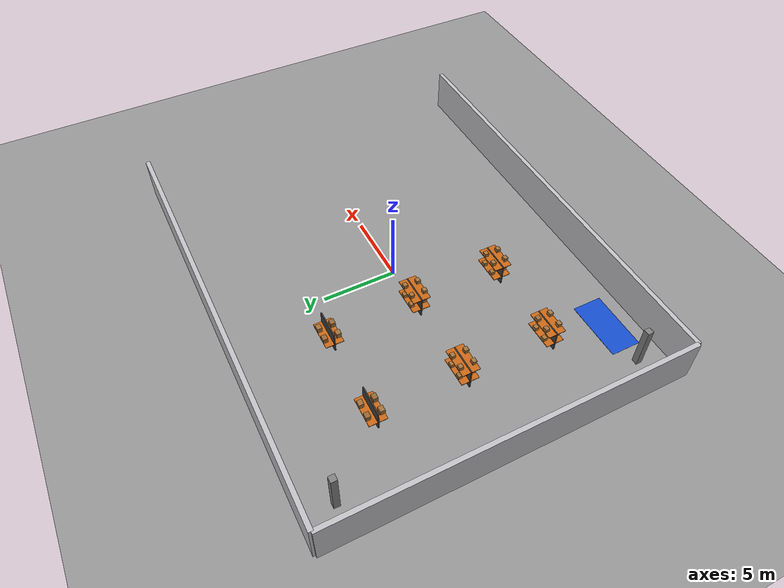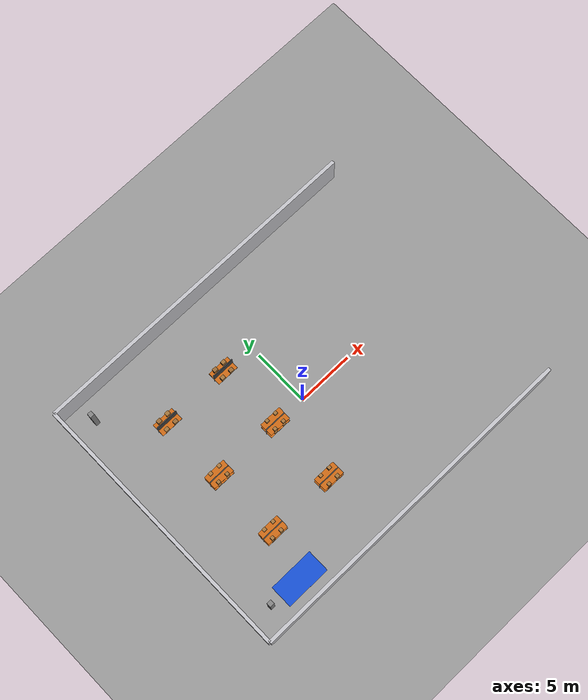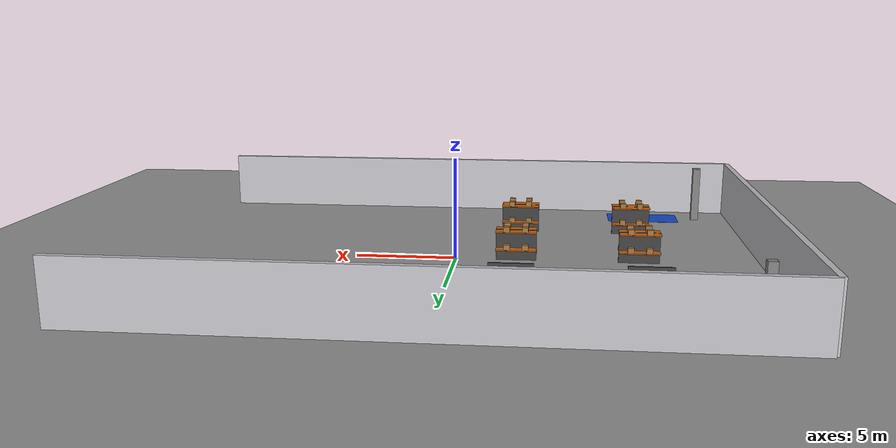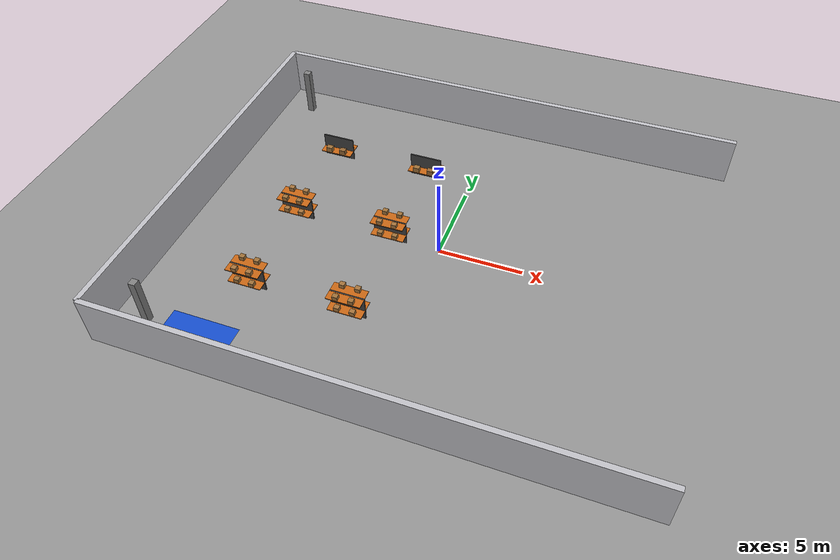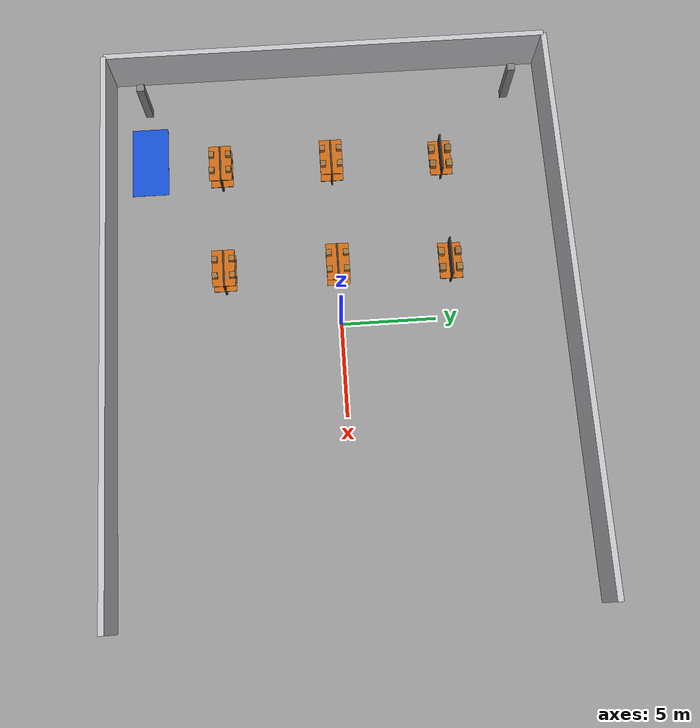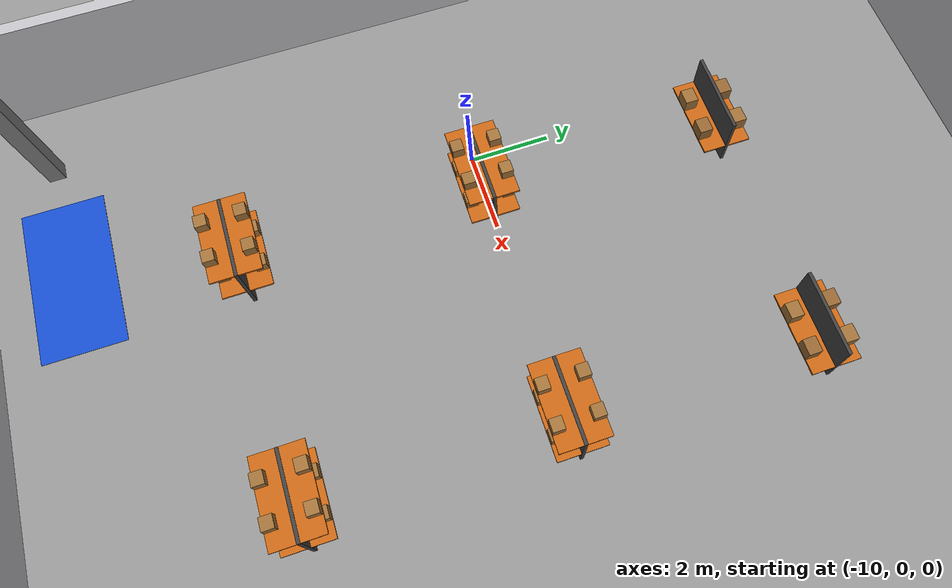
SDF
<sdf version="1.7">
 <world name="multi_robot_warehouse">
  <model name="ground_plane">
   <static>true</static>
   <link name="link">
    <collision name="collision">
     <geometry><plane><normal>0 0 1</normal><size>80 80</size></plane></geometry>
     <surface><friction><ode><mu>0.9</mu><mu2>0.9</mu2></ode></friction></surface>
    </collision>
    <visual name="visual">
     <geometry><plane><normal>0 0 1</normal><size>80 80</size></plane></geometry>
     <material>
      <ambient>0.50 0.50 0.50 1</ambient>
      <diffuse>0.58 0.58 0.58 1</diffuse>
      <specular>0.08 0.08 0.08 1</specular>
     </material>
    </visual>
   </link>
  </model>
  <model name="north_wall">
   <static>true</static>
   <pose>0 12 1.5 0 0 0</pose>
   <link name="link">
    <collision name="collision"><geometry><box><size>30 0.3 3</size></box></geometry></collision>
    <visual name="visual">
     <geometry><box><size>30 0.3 3</size></box></geometry>
     <material>
      <ambient>0.70 0.70 0.72 1</ambient>
      <diffuse>0.75 0.75 0.77 1</diffuse>
      <specular>0.15 0.15 0.15 1</specular>
     </material>
    </visual>
   </link>
  </model>
  <model name="south_wall">
   <static>true</static>
   <pose>0 -12 1.5 0 0 0</pose>
   <link name="link">
    <collision name="collision"><geometry><box><size>30 0.3 3</size></box></geometry></collision>
    <visual name="visual">
     <geometry><box><size>30 0.3 3</size></box></geometry>
     <material>
      <ambient>0.70 0.70 0.72 1</ambient>
      <diffuse>0.75 0.75 0.77 1</diffuse>
      <specular>0.15 0.15 0.15 1</specular>
     </material>
    </visual>
   </link>
  </model>
  <model name="west_wall">
   <static>true</static>
   <pose>-15 0 1.5 0 0 0</pose>
   <link name="link">
    <collision name="collision"><geometry><box><size>0.3 24 3</size></box></geometry></collision>
    <visual name="visual">
     <geometry><box><size>0.3 24 3</size></box></geometry>
     <material>
      <ambient>0.70 0.70 0.72 1</ambient>
      <diffuse>0.75 0.75 0.77 1</diffuse>
      <specular>0.15 0.15 0.15 1</specular>
     </material>
    </visual>
   </link>
  </model>
  <model name="pillar_nw">
   <static>true</static>
   <pose>-13 10 1.5 0 0 0</pose>
   <link name="link">
    <collision name="collision"><geometry><box><size>0.4 0.4 3.0</size></box></geometry></collision>
    <visual name="visual">
     <geometry><box><size>0.4 0.4 3.0</size></box></geometry>
     <material>
      <ambient>0.45 0.45 0.45 1</ambient>
      <diffuse>0.50 0.50 0.50 1</diffuse>
      <specular>0.20 0.20 0.20 1</specular>
     </material>
    </visual>
   </link>
  </model>
  <model name="pillar_sw">
   <static>true</static>
   <pose>-13 -10 1.5 0 0 0</pose>
   <link name="link">
    <collision name="collision"><geometry><box><size>0.4 0.4 3.0</size></box></geometry></collision>
    <visual name="visual">
     <geometry><box><size>0.4 0.4 3.0</size></box></geometry>
     <material>
      <ambient>0.45 0.45 0.45 1</ambient>
      <diffuse>0.50 0.50 0.50 1</diffuse>
      <specular>0.20 0.20 0.20 1</specular>
     </material>
    </visual>
   </link>
  </model>
  <model name="shelf_1_1_frame">
   <static>true</static>
   <pose>-9 6 0.75 0 0 0</pose>
   <link name="link">
    <collision name="collision"><geometry><box><size>2.0 0.08 1.5</size></box></geometry></collision>
    <visual name="visual">
     <geometry><box><size>2.0 0.08 1.5</size></box></geometry>
     <material>
      <ambient>0.20 0.20 0.20 1</ambient>
      <diffuse>0.25 0.25 0.25 1</diffuse>
      <specular>0.30 0.30 0.30 1</specular>
     </material>
    </visual>
   </link>
  </model>
  <model name="shelf_1_1_board_low">
   <static>true</static>
   <pose>-9 6 0.6 0 0 0</pose>
   <link name="link">
    <visual name="visual">
     <geometry><box><size>2.0 1.2 0.05</size></box></geometry>
     <material>
      <ambient>0.72 0.35 0.05 1</ambient>
      <diffuse>0.78 0.40 0.08 1</diffuse>
      <specular>0.20 0.12 0.04 1</specular>
     </material>
    </visual>
    <collision name="collision"><geometry><box><size>2.0 1.2 0.05</size></box></geometry></collision>
   </link>
  </model>
  <model name="shelf_1_2_frame">
   <static>true</static>
   <pose>-3 6 0.75 0 0 0</pose>
   <link name="link">
    <collision name="collision"><geometry><box><size>2.0 0.08 1.5</size></box></geometry></collision>
    <visual name="visual">
     <geometry><box><size>2.0 0.08 1.5</size></box></geometry>
     <material>
      <ambient>0.20 0.20 0.20 1</ambient>
      <diffuse>0.25 0.25 0.25 1</diffuse>
      <specular>0.30 0.30 0.30 1</specular>
     </material>
    </visual>
   </link>
  </model>
  <model name="shelf_1_2_board_low">
   <static>true</static>
   <pose>-3 6 0.6 0 0 0</pose>
   <link name="link">
    <visual name="visual">
     <geometry><box><size>2.0 1.2 0.05</size></box></geometry>
     <material>
      <ambient>0.72 0.35 0.05 1</ambient>
      <diffuse>0.78 0.40 0.08 1</diffuse>
      <specular>0.20 0.12 0.04 1</specular>
     </material>
    </visual>
    <collision name="collision"><geometry><box><size>2.0 1.2 0.05</size></box></geometry></collision>
   </link>
  </model>
  <model name="bigbox_1_1_ll">
   <static>true</static>
   <pose>-9.45 5.55 0.795 0 0 0</pose>
   <link name="bigbox_1_1_ll">
    <visual name="visual">
     <geometry><box><size>0.38 0.32 0.34</size></box></geometry>
     <material>
      <ambient>0.55 0.38 0.18 1</ambient>
      <diffuse>0.62 0.44 0.22 1</diffuse>
      <specular>0.05 0.04 0.02 1</specular>
     </material>
    </visual>
    <collision name="collision"><geometry><box><size>0.38 0.32 0.34</size></box></geometry></collision>
   </link>
  </model>
  <model name="bigbox_1_1_lr">
   <static>true</static>
   <pose>-9.45 6.45 0.795 0 0 0</pose>
   <link name="bigbox_1_1_lr">
    <visual name="visual">
     <geometry><box><size>0.38 0.32 0.34</size></box></geometry>
     <material>
      <ambient>0.5 0.35 0.15 1</ambient>
      <diffuse>0.58 0.4 0.2 1</diffuse>
      <specular>0.05 0.04 0.02 1</specular>
     </material>
    </visual>
    <collision name="collision"><geometry><box><size>0.38 0.32 0.34</size></box></geometry></collision>
   </link>
  </model>
  <model name="bigbox_1_1_rl">
   <static>true</static>
   <pose>-8.55 5.55 0.795 0 0 0</pose>
   <link name="bigbox_1_1_rl">
    <visual name="visual">
     <geometry><box><size>0.38 0.32 0.34</size></box></geometry>
     <material>
      <ambient>0.5 0.35 0.15 1</ambient>
      <diffuse>0.58 0.4 0.2 1</diffuse>
      <specular>0.05 0.04 0.02 1</specular>
     </material>
    </visual>
    <collision name="collision"><geometry><box><size>0.38 0.32 0.34</size></box></geometry></collision>
   </link>
  </model>
  <model name="bigbox_1_1_rr">
   <static>true</static>
   <pose>-8.55 6.45 0.795 0 0 0</pose>
   <link name="bigbox_1_1_rr">
    <visual name="visual">
     <geometry><box><size>0.38 0.32 0.34</size></box></geometry>
     <material>
      <ambient>0.55 0.38 0.18 1</ambient>
      <diffuse>0.62 0.44 0.22 1</diffuse>
      <specular>0.05 0.04 0.02 1</specular>
     </material>
    </visual>
    <collision name="collision"><geometry><box><size>0.38 0.32 0.34</size></box></geometry></collision>
   </link>
  </model>
  <model name="bigbox_1_2_ll">
   <static>true</static>
   <pose>-3.45 5.55 0.795 0 0 0</pose>
   <link name="bigbox_1_2_ll">
    <visual name="visual">
     <geometry><box><size>0.38 0.32 0.34</size></box></geometry>
     <material>
      <ambient>0.55 0.38 0.18 1</ambient>
      <diffuse>0.62 0.44 0.22 1</diffuse>
      <specular>0.05 0.04 0.02 1</specular>
     </material>
    </visual>
    <collision name="collision"><geometry><box><size>0.38 0.32 0.34</size></box></geometry></collision>
   </link>
  </model>
  <model name="bigbox_1_2_lr">
   <static>true</static>
   <pose>-3.45 6.45 0.795 0 0 0</pose>
   <link name="bigbox_1_2_lr">
    <visual name="visual">
     <geometry><box><size>0.38 0.32 0.34</size></box></geometry>
     <material>
      <ambient>0.5 0.35 0.15 1</ambient>
      <diffuse>0.58 0.4 0.2 1</diffuse>
      <specular>0.05 0.04 0.02 1</specular>
     </material>
    </visual>
    <collision name="collision"><geometry><box><size>0.38 0.32 0.34</size></box></geometry></collision>
   </link>
  </model>
  <model name="bigbox_1_2_rl">
   <static>true</static>
   <pose>-2.55 5.55 0.795 0 0 0</pose>
   <link name="bigbox_1_2_rl">
    <visual name="visual">
     <geometry><box><size>0.38 0.32 0.34</size></box></geometry>
     <material>
      <ambient>0.5 0.35 0.15 1</ambient>
      <diffuse>0.58 0.4 0.2 1</diffuse>
      <specular>0.05 0.04 0.02 1</specular>
     </material>
    </visual>
    <collision name="collision"><geometry><box><size>0.38 0.32 0.34</size></box></geometry></collision>
   </link>
  </model>
  <model name="bigbox_1_2_rr">
   <static>true</static>
   <pose>-2.55 6.45 0.795 0 0 0</pose>
   <link name="bigbox_1_2_rr">
    <visual name="visual">
     <geometry><box><size>0.38 0.32 0.34</size></box></geometry>
     <material>
      <ambient>0.55 0.38 0.18 1</ambient>
      <diffuse>0.62 0.44 0.22 1</diffuse>
      <specular>0.05 0.04 0.02 1</specular>
     </material>
    </visual>
    <collision name="collision"><geometry><box><size>0.38 0.32 0.34</size></box></geometry></collision>
   </link>
  </model>
  <model name="shelf_2_1_frame">
   <static>true</static>
   <pose>-9 0 0.765 0 0 0</pose>
   <link name="link">
    <collision name="collision"><geometry><box><size>2.0 0.08 1.53</size></box></geometry></collision>
    <visual name="visual">
     <geometry><box><size>2.0 0.08 1.53</size></box></geometry>
     <material>
      <ambient>0.20 0.20 0.20 1</ambient>
      <diffuse>0.25 0.25 0.25 1</diffuse>
      <specular>0.30 0.30 0.30 1</specular>
     </material>
    </visual>
   </link>
  </model>
  <model name="shelf_2_1_board_low">
   <static>true</static>
   <pose>-9 0 0.6 0 0 0</pose>
   <link name="link">
    <visual name="visual">
     <geometry><box><size>2.0 1.2 0.05</size></box></geometry>
     <material>
      <ambient>0.72 0.35 0.05 1</ambient>
      <diffuse>0.78 0.40 0.08 1</diffuse>
      <specular>0.20 0.12 0.04 1</specular>
     </material>
    </visual>
    <collision name="collision"><geometry><box><size>2.0 1.2 0.05</size></box></geometry></collision>
   </link>
  </model>
  <model name="box_2_1_low_la">
   <static>true</static>
   <pose>-9.45 -0.45 0.755 0 0 0.0</pose>
   <link name="box_2_1_low_la">
    <visual name="visual">
     <geometry><box><size>0.3 0.28 0.26</size></box></geometry>
     <material>
      <ambient>0.58 0.4 0.19 1</ambient>
      <diffuse>0.64 0.45 0.23 1</diffuse>
      <specular>0.05 0.04 0.02 1</specular>
     </material>
    </visual>
    <collision name="collision"><geometry><box><size>0.3 0.28 0.26</size></box></geometry></collision>
   </link>
  </model>
  <model name="box_2_1_low_lb">
   <static>true</static>
   <pose>-9.45 0.45 0.755 0 0 0.0</pose>
   <link name="box_2_1_low_lb">
    <visual name="visual">
     <geometry><box><size>0.3 0.28 0.26</size></box></geometry>
     <material>
      <ambient>0.55 0.38 0.18 1</ambient>
      <diffuse>0.62 0.44 0.22 1</diffuse>
      <specular>0.05 0.04 0.02 1</specular>
     </material>
    </visual>
    <collision name="collision"><geometry><box><size>0.3 0.28 0.26</size></box></geometry></collision>
   </link>
  </model>
  <model name="box_2_1_low_ra">
   <static>true</static>
   <pose>-8.55 -0.45 0.755 0 0 0.0</pose>
   <link name="box_2_1_low_ra">
    <visual name="visual">
     <geometry><box><size>0.3 0.28 0.26</size></box></geometry>
     <material>
      <ambient>0.58 0.4 0.19 1</ambient>
      <diffuse>0.64 0.45 0.23 1</diffuse>
      <specular>0.05 0.04 0.02 1</specular>
     </material>
    </visual>
    <collision name="collision"><geometry><box><size>0.3 0.28 0.26</size></box></geometry></collision>
   </link>
  </model>
  <model name="box_2_1_low_rb">
   <static>true</static>
   <pose>-8.55 0.45 0.755 0 0 0.0</pose>
   <link name="box_2_1_low_rb">
    <visual name="visual">
     <geometry><box><size>0.3 0.28 0.26</size></box></geometry>
     <material>
      <ambient>0.55 0.38 0.18 1</ambient>
      <diffuse>0.62 0.44 0.22 1</diffuse>
      <specular>0.05 0.04 0.02 1</specular>
     </material>
    </visual>
    <collision name="collision"><geometry><box><size>0.3 0.28 0.26</size></box></geometry></collision>
   </link>
  </model>
  <model name="shelf_2_1_board_high">
   <static>true</static>
   <pose>-9 0 1.5 0 0 0</pose>
   <link name="link">
    <visual name="visual">
     <geometry><box><size>2.0 1.2 0.05</size></box></geometry>
     <material>
      <ambient>0.72 0.35 0.05 1</ambient>
      <diffuse>0.78 0.40 0.08 1</diffuse>
      <specular>0.20 0.12 0.04 1</specular>
     </material>
    </visual>
    <collision name="collision"><geometry><box><size>2.0 1.2 0.05</size></box></geometry></collision>
   </link>
  </model>
  <model name="box_2_1_high_la">
   <static>true</static>
   <pose>-9.45 -0.45 1.655 0 0 0.0</pose>
   <link name="box_2_1_high_la">
    <visual name="visual">
     <geometry><box><size>0.3 0.28 0.26</size></box></geometry>
     <material>
      <ambient>0.55 0.38 0.18 1</ambient>
      <diffuse>0.62 0.44 0.22 1</diffuse>
      <specular>0.05 0.04 0.02 1</specular>
     </material>
    </visual>
   </link>
  </model>
  <model name="box_2_1_high_lb">
   <static>true</static>
   <pose>-9.45 0.45 1.655 0 0 0.0</pose>
   <link name="box_2_1_high_lb">
    <visual name="visual">
     <geometry><box><size>0.3 0.28 0.26</size></box></geometry>
     <material>
      <ambient>0.58 0.4 0.19 1</ambient>
      <diffuse>0.64 0.45 0.23 1</diffuse>
      <specular>0.05 0.04 0.02 1</specular>
     </material>
    </visual>
   </link>
  </model>
  <model name="box_2_1_high_ra">
   <static>true</static>
   <pose>-8.55 -0.45 1.655 0 0 0.0</pose>
   <link name="box_2_1_high_ra">
    <visual name="visual">
     <geometry><box><size>0.3 0.28 0.26</size></box></geometry>
     <material>
      <ambient>0.55 0.38 0.18 1</ambient>
      <diffuse>0.62 0.44 0.22 1</diffuse>
      <specular>0.05 0.04 0.02 1</specular>
     </material>
    </visual>
   </link>
  </model>
  <model name="box_2_1_high_rb">
   <static>true</static>
   <pose>-8.55 0.45 1.655 0 0 0.0</pose>
   <link name="box_2_1_high_rb">
    <visual name="visual">
     <geometry><box><size>0.3 0.28 0.26</size></box></geometry>
     <material>
      <ambient>0.58 0.4 0.19 1</ambient>
      <diffuse>0.64 0.45 0.23 1</diffuse>
      <specular>0.05 0.04 0.02 1</specular>
     </material>
    </visual>
   </link>
  </model>
  <model name="shelf_2_2_frame">
   <static>true</static>
   <pose>-3 0 0.765 0 0 0</pose>
   <link name="link">
    <collision name="collision"><geometry><box><size>2.0 0.08 1.53</size></box></geometry></collision>
    <visual name="visual">
     <geometry><box><size>2.0 0.08 1.53</size></box></geometry>
     <material>
      <ambient>0.20 0.20 0.20 1</ambient>
      <diffuse>0.25 0.25 0.25 1</diffuse>
      <specular>0.30 0.30 0.30 1</specular>
     </material>
    </visual>
   </link>
  </model>
  <model name="shelf_2_2_board_low">
   <static>true</static>
   <pose>-3 0 0.6 0 0 0</pose>
   <link name="link">
    <visual name="visual">
     <geometry><box><size>2.0 1.2 0.05</size></box></geometry>
     <material>
      <ambient>0.72 0.35 0.05 1</ambient>
      <diffuse>0.78 0.40 0.08 1</diffuse>
      <specular>0.20 0.12 0.04 1</specular>
     </material>
    </visual>
    <collision name="collision"><geometry><box><size>2.0 1.2 0.05</size></box></geometry></collision>
   </link>
  </model>
  <model name="box_2_2_low_la">
   <static>true</static>
   <pose>-3.45 -0.45 0.755 0 0 0.0</pose>
   <link name="box_2_2_low_la">
    <visual name="visual">
     <geometry><box><size>0.3 0.28 0.26</size></box></geometry>
     <material>
      <ambient>0.55 0.38 0.18 1</ambient>
      <diffuse>0.62 0.44 0.22 1</diffuse>
      <specular>0.05 0.04 0.02 1</specular>
     </material>
    </visual>
    <collision name="collision"><geometry><box><size>0.3 0.28 0.26</size></box></geometry></collision>
   </link>
  </model>
  <model name="box_2_2_low_lb">
   <static>true</static>
   <pose>-3.45 0.45 0.755 0 0 0.0</pose>
   <link name="box_2_2_low_lb">
    <visual name="visual">
     <geometry><box><size>0.3 0.28 0.26</size></box></geometry>
     <material>
      <ambient>0.58 0.4 0.19 1</ambient>
      <diffuse>0.64 0.45 0.23 1</diffuse>
      <specular>0.05 0.04 0.02 1</specular>
     </material>
    </visual>
    <collision name="collision"><geometry><box><size>0.3 0.28 0.26</size></box></geometry></collision>
   </link>
  </model>
  <model name="box_2_2_low_ra">
   <static>true</static>
   <pose>-2.55 -0.45 0.755 0 0 0.0</pose>
   <link name="box_2_2_low_ra">
    <visual name="visual">
     <geometry><box><size>0.3 0.28 0.26</size></box></geometry>
     <material>
      <ambient>0.55 0.38 0.18 1</ambient>
      <diffuse>0.62 0.44 0.22 1</diffuse>
      <specular>0.05 0.04 0.02 1</specular>
     </material>
    </visual>
    <collision name="collision"><geometry><box><size>0.3 0.28 0.26</size></box></geometry></collision>
   </link>
  </model>
  <model name="box_2_2_low_rb">
   <static>true</static>
   <pose>-2.55 0.45 0.755 0 0 0.0</pose>
   <link name="box_2_2_low_rb">
    <visual name="visual">
     <geometry><box><size>0.3 0.28 0.26</size></box></geometry>
     <material>
      <ambient>0.58 0.4 0.19 1</ambient>
      <diffuse>0.64 0.45 0.23 1</diffuse>
      <specular>0.05 0.04 0.02 1</specular>
     </material>
    </visual>
    <collision name="collision"><geometry><box><size>0.3 0.28 0.26</size></box></geometry></collision>
   </link>
  </model>
  <model name="shelf_2_2_board_high">
   <static>true</static>
   <pose>-3 0 1.5 0 0 0</pose>
   <link name="link">
    <visual name="visual">
     <geometry><box><size>2.0 1.2 0.05</size></box></geometry>
     <material>
      <ambient>0.72 0.35 0.05 1</ambient>
      <diffuse>0.78 0.40 0.08 1</diffuse>
      <specular>0.20 0.12 0.04 1</specular>
     </material>
    </visual>
    <collision name="collision"><geometry><box><size>2.0 1.2 0.05</size></box></geometry></collision>
   </link>
  </model>
  <model name="box_2_2_high_la">
   <static>true</static>
   <pose>-3.45 -0.45 1.655 0 0 0.0</pose>
   <link name="box_2_2_high_la">
    <visual name="visual">
     <geometry><box><size>0.3 0.28 0.26</size></box></geometry>
     <material>
      <ambient>0.58 0.4 0.19 1</ambient>
      <diffuse>0.64 0.45 0.23 1</diffuse>
      <specular>0.05 0.04 0.02 1</specular>
     </material>
    </visual>
   </link>
  </model>
  <model name="box_2_2_high_lb">
   <static>true</static>
   <pose>-3.45 0.45 1.655 0 0 0.0</pose>
   <link name="box_2_2_high_lb">
    <visual name="visual">
     <geometry><box><size>0.3 0.28 0.26</size></box></geometry>
     <material>
      <ambient>0.55 0.38 0.18 1</ambient>
      <diffuse>0.62 0.44 0.22 1</diffuse>
      <specular>0.05 0.04 0.02 1</specular>
     </material>
    </visual>
   </link>
  </model>
  <model name="box_2_2_high_ra">
   <static>true</static>
   <pose>-2.55 -0.45 1.655 0 0 0.0</pose>
   <link name="box_2_2_high_ra">
    <visual name="visual">
     <geometry><box><size>0.3 0.28 0.26</size></box></geometry>
     <material>
      <ambient>0.58 0.4 0.19 1</ambient>
      <diffuse>0.64 0.45 0.23 1</diffuse>
      <specular>0.05 0.04 0.02 1</specular>
     </material>
    </visual>
   </link>
  </model>
  <model name="box_2_2_high_rb">
   <static>true</static>
   <pose>-2.55 0.45 1.655 0 0 0.0</pose>
   <link name="box_2_2_high_rb">
    <visual name="visual">
     <geometry><box><size>0.3 0.28 0.26</size></box></geometry>
     <material>
      <ambient>0.55 0.38 0.18 1</ambient>
      <diffuse>0.62 0.44 0.22 1</diffuse>
      <specular>0.05 0.04 0.02 1</specular>
     </material>
    </visual>
   </link>
  </model>
  <model name="shelf_3_1_frame">
   <static>true</static>
   <pose>-9 -6 0.765 0 0 0</pose>
   <link name="link">
    <collision name="collision"><geometry><box><size>2.0 0.08 1.53</size></box></geometry></collision>
    <visual name="visual">
     <geometry><box><size>2.0 0.08 1.53</size></box></geometry>
     <material>
      <ambient>0.20 0.20 0.20 1</ambient>
      <diffuse>0.25 0.25 0.25 1</diffuse>
      <specular>0.30 0.30 0.30 1</specular>
     </material>
    </visual>
   </link>
  </model>
  <model name="shelf_3_1_board_low">
   <static>true</static>
   <pose>-9 -6 0.6 0 0 0</pose>
   <link name="link">
    <visual name="visual">
     <geometry><box><size>2.0 1.2 0.05</size></box></geometry>
     <material>
      <ambient>0.72 0.35 0.05 1</ambient>
      <diffuse>0.78 0.40 0.08 1</diffuse>
      <specular>0.20 0.12 0.04 1</specular>
     </material>
    </visual>
    <collision name="collision"><geometry><box><size>2.0 1.2 0.05</size></box></geometry></collision>
   </link>
  </model>
  <model name="box_3_1_low_la">
   <static>true</static>
   <pose>-9.45 -6.45 0.755 0 0 0.0</pose>
   <link name="box_3_1_low_la">
    <visual name="visual">
     <geometry><box><size>0.3 0.28 0.26</size></box></geometry>
     <material>
      <ambient>0.55 0.38 0.18 1</ambient>
      <diffuse>0.62 0.44 0.22 1</diffuse>
      <specular>0.05 0.04 0.02 1</specular>
     </material>
    </visual>
    <collision name="collision"><geometry><box><size>0.3 0.28 0.26</size></box></geometry></collision>
   </link>
  </model>
  <model name="box_3_1_low_lb">
   <static>true</static>
   <pose>-9.45 -5.55 0.755 0 0 0.0</pose>
   <link name="box_3_1_low_lb">
    <visual name="visual">
     <geometry><box><size>0.3 0.28 0.26</size></box></geometry>
     <material>
      <ambient>0.58 0.4 0.19 1</ambient>
      <diffuse>0.64 0.45 0.23 1</diffuse>
      <specular>0.05 0.04 0.02 1</specular>
     </material>
    </visual>
    <collision name="collision"><geometry><box><size>0.3 0.28 0.26</size></box></geometry></collision>
   </link>
  </model>
  <model name="box_3_1_low_ra">
   <static>true</static>
   <pose>-8.55 -6.45 0.755 0 0 0.0</pose>
   <link name="box_3_1_low_ra">
    <visual name="visual">
     <geometry><box><size>0.3 0.28 0.26</size></box></geometry>
     <material>
      <ambient>0.55 0.38 0.18 1</ambient>
      <diffuse>0.62 0.44 0.22 1</diffuse>
      <specular>0.05 0.04 0.02 1</specular>
     </material>
    </visual>
    <collision name="collision"><geometry><box><size>0.3 0.28 0.26</size></box></geometry></collision>
   </link>
  </model>
  <model name="box_3_1_low_rb">
   <static>true</static>
   <pose>-8.55 -5.55 0.755 0 0 0.0</pose>
   <link name="box_3_1_low_rb">
    <visual name="visual">
     <geometry><box><size>0.3 0.28 0.26</size></box></geometry>
     <material>
      <ambient>0.58 0.4 0.19 1</ambient>
      <diffuse>0.64 0.45 0.23 1</diffuse>
      <specular>0.05 0.04 0.02 1</specular>
     </material>
    </visual>
    <collision name="collision"><geometry><box><size>0.3 0.28 0.26</size></box></geometry></collision>
   </link>
  </model>
  <model name="shelf_3_1_board_high">
   <static>true</static>
   <pose>-9 -6 1.5 0 0 0</pose>
   <link name="link">
    <visual name="visual">
     <geometry><box><size>2.0 1.2 0.05</size></box></geometry>
     <material>
      <ambient>0.72 0.35 0.05 1</ambient>
      <diffuse>0.78 0.40 0.08 1</diffuse>
      <specular>0.20 0.12 0.04 1</specular>
     </material>
    </visual>
    <collision name="collision"><geometry><box><size>2.0 1.2 0.05</size></box></geometry></collision>
   </link>
  </model>
  <model name="box_3_1_high_la">
   <static>true</static>
   <pose>-9.45 -6.45 1.655 0 0 0.0</pose>
   <link name="box_3_1_high_la">
    <visual name="visual">
     <geometry><box><size>0.3 0.28 0.26</size></box></geometry>
     <material>
      <ambient>0.58 0.4 0.19 1</ambient>
      <diffuse>0.64 0.45 0.23 1</diffuse>
      <specular>0.05 0.04 0.02 1</specular>
     </material>
    </visual>
   </link>
  </model>
  <model name="box_3_1_high_lb">
   <static>true</static>
   <pose>-9.45 -5.55 1.655 0 0 0.0</pose>
   <link name="box_3_1_high_lb">
    <visual name="visual">
     <geometry><box><size>0.3 0.28 0.26</size></box></geometry>
     <material>
      <ambient>0.55 0.38 0.18 1</ambient>
      <diffuse>0.62 0.44 0.22 1</diffuse>
      <specular>0.05 0.04 0.02 1</specular>
     </material>
    </visual>
   </link>
  </model>
  <model name="box_3_1_high_ra">
   <static>true</static>
   <pose>-8.55 -6.45 1.655 0 0 0.0</pose>
   <link name="box_3_1_high_ra">
    <visual name="visual">
     <geometry><box><size>0.3 0.28 0.26</size></box></geometry>
     <material>
      <ambient>0.58 0.4 0.19 1</ambient>
      <diffuse>0.64 0.45 0.23 1</diffuse>
      <specular>0.05 0.04 0.02 1</specular>
     </material>
    </visual>
   </link>
  </model>
  <model name="box_3_1_high_rb">
   <static>true</static>
   <pose>-8.55 -5.55 1.655 0 0 0.0</pose>
   <link name="box_3_1_high_rb">
    <visual name="visual">
     <geometry><box><size>0.3 0.28 0.26</size></box></geometry>
     <material>
      <ambient>0.55 0.38 0.18 1</ambient>
      <diffuse>0.62 0.44 0.22 1</diffuse>
      <specular>0.05 0.04 0.02 1</specular>
     </material>
    </visual>
   </link>
  </model>
  <model name="shelf_3_2_frame">
   <static>true</static>
   <pose>-3 -6 0.765 0 0 0</pose>
   <link name="link">
    <collision name="collision"><geometry><box><size>2.0 0.08 1.53</size></box></geometry></collision>
    <visual name="visual">
     <geometry><box><size>2.0 0.08 1.53</size></box></geometry>
     <material>
      <ambient>0.20 0.20 0.20 1</ambient>
      <diffuse>0.25 0.25 0.25 1</diffuse>
      <specular>0.30 0.30 0.30 1</specular>
     </material>
    </visual>
   </link>
  </model>
  <model name="shelf_3_2_board_low">
   <static>true</static>
   <pose>-3 -6 0.6 0 0 0</pose>
   <link name="link">
    <visual name="visual">
     <geometry><box><size>2.0 1.2 0.05</size></box></geometry>
     <material>
      <ambient>0.72 0.35 0.05 1</ambient>
      <diffuse>0.78 0.40 0.08 1</diffuse>
      <specular>0.20 0.12 0.04 1</specular>
     </material>
    </visual>
    <collision name="collision"><geometry><box><size>2.0 1.2 0.05</size></box></geometry></collision>
   </link>
  </model>
  <model name="box_3_2_low_la">
   <static>true</static>
   <pose>-3.45 -6.45 0.755 0 0 0.0</pose>
   <link name="box_3_2_low_la">
    <visual name="visual">
     <geometry><box><size>0.3 0.28 0.26</size></box></geometry>
     <material>
      <ambient>0.58 0.4 0.19 1</ambient>
      <diffuse>0.64 0.45 0.23 1</diffuse>
      <specular>0.05 0.04 0.02 1</specular>
     </material>
    </visual>
    <collision name="collision"><geometry><box><size>0.3 0.28 0.26</size></box></geometry></collision>
   </link>
  </model>
  <model name="box_3_2_low_lb">
   <static>true</static>
   <pose>-3.45 -5.55 0.755 0 0 0.0</pose>
   <link name="box_3_2_low_lb">
    <visual name="visual">
     <geometry><box><size>0.3 0.28 0.26</size></box></geometry>
     <material>
      <ambient>0.55 0.38 0.18 1</ambient>
      <diffuse>0.62 0.44 0.22 1</diffuse>
      <specular>0.05 0.04 0.02 1</specular>
     </material>
    </visual>
    <collision name="collision"><geometry><box><size>0.3 0.28 0.26</size></box></geometry></collision>
   </link>
  </model>
  <model name="box_3_2_low_ra">
   <static>true</static>
   <pose>-2.55 -6.45 0.755 0 0 0.0</pose>
   <link name="box_3_2_low_ra">
    <visual name="visual">
     <geometry><box><size>0.3 0.28 0.26</size></box></geometry>
     <material>
      <ambient>0.58 0.4 0.19 1</ambient>
      <diffuse>0.64 0.45 0.23 1</diffuse>
      <specular>0.05 0.04 0.02 1</specular>
     </material>
    </visual>
    <collision name="collision"><geometry><box><size>0.3 0.28 0.26</size></box></geometry></collision>
   </link>
  </model>
  <model name="box_3_2_low_rb">
   <static>true</static>
   <pose>-2.55 -5.55 0.755 0 0 0.0</pose>
   <link name="box_3_2_low_rb">
    <visual name="visual">
     <geometry><box><size>0.3 0.28 0.26</size></box></geometry>
     <material>
      <ambient>0.55 0.38 0.18 1</ambient>
      <diffuse>0.62 0.44 0.22 1</diffuse>
      <specular>0.05 0.04 0.02 1</specular>
     </material>
    </visual>
    <collision name="collision"><geometry><box><size>0.3 0.28 0.26</size></box></geometry></collision>
   </link>
  </model>
  <model name="shelf_3_2_board_high">
   <static>true</static>
   <pose>-3 -6 1.5 0 0 0</pose>
   <link name="link">
    <visual name="visual">
     <geometry><box><size>2.0 1.2 0.05</size></box></geometry>
     <material>
      <ambient>0.72 0.35 0.05 1</ambient>
      <diffuse>0.78 0.40 0.08 1</diffuse>
      <specular>0.20 0.12 0.04 1</specular>
     </material>
    </visual>
    <collision name="collision"><geometry><box><size>2.0 1.2 0.05</size></box></geometry></collision>
   </link>
  </model>
  <model name="box_3_2_high_la">
   <static>true</static>
   <pose>-3.45 -6.45 1.655 0 0 0.0</pose>
   <link name="box_3_2_high_la">
    <visual name="visual">
     <geometry><box><size>0.3 0.28 0.26</size></box></geometry>
     <material>
      <ambient>0.55 0.38 0.18 1</ambient>
      <diffuse>0.62 0.44 0.22 1</diffuse>
      <specular>0.05 0.04 0.02 1</specular>
     </material>
    </visual>
   </link>
  </model>
  <model name="box_3_2_high_lb">
   <static>true</static>
   <pose>-3.45 -5.55 1.655 0 0 0.0</pose>
   <link name="box_3_2_high_lb">
    <visual name="visual">
     <geometry><box><size>0.3 0.28 0.26</size></box></geometry>
     <material>
      <ambient>0.58 0.4 0.19 1</ambient>
      <diffuse>0.64 0.45 0.23 1</diffuse>
      <specular>0.05 0.04 0.02 1</specular>
     </material>
    </visual>
   </link>
  </model>
  <model name="box_3_2_high_ra">
   <static>true</static>
   <pose>-2.55 -6.45 1.655 0 0 0.0</pose>
   <link name="box_3_2_high_ra">
    <visual name="visual">
     <geometry><box><size>0.3 0.28 0.26</size></box></geometry>
     <material>
      <ambient>0.55 0.38 0.18 1</ambient>
      <diffuse>0.62 0.44 0.22 1</diffuse>
      <specular>0.05 0.04 0.02 1</specular>
     </material>
    </visual>
   </link>
  </model>
  <model name="box_3_2_high_rb">
   <static>true</static>
   <pose>-2.55 -5.55 1.655 0 0 0.0</pose>
   <link name="box_3_2_high_rb">
    <visual name="visual">
     <geometry><box><size>0.3 0.28 0.26</size></box></geometry>
     <material>
      <ambient>0.58 0.4 0.19 1</ambient>
      <diffuse>0.64 0.45 0.23 1</diffuse>
      <specular>0.05 0.04 0.02 1</specular>
     </material>
    </visual>
   </link>
  </model>
  <model name="charging_station_base">
   <static>true</static>
   <pose>-10 -10 0.005 0 0 0</pose>
   <link name="link">
    <collision name="collision"><geometry><box><size>3.0 2.0 0.01</size></box></geometry></collision>
    <visual name="visual">
     <geometry><box><size>4.0 2.0 0.01</size></box></geometry>
     <material>
      <ambient>0.05 0.25 0.70 1</ambient>
      <diffuse>0.08 0.30 0.80 1</diffuse>
      <specular>0.30 0.40 0.60 1</specular>
     </material>
    </visual>
   </link>
  </model>
 </world>
</sdf>
